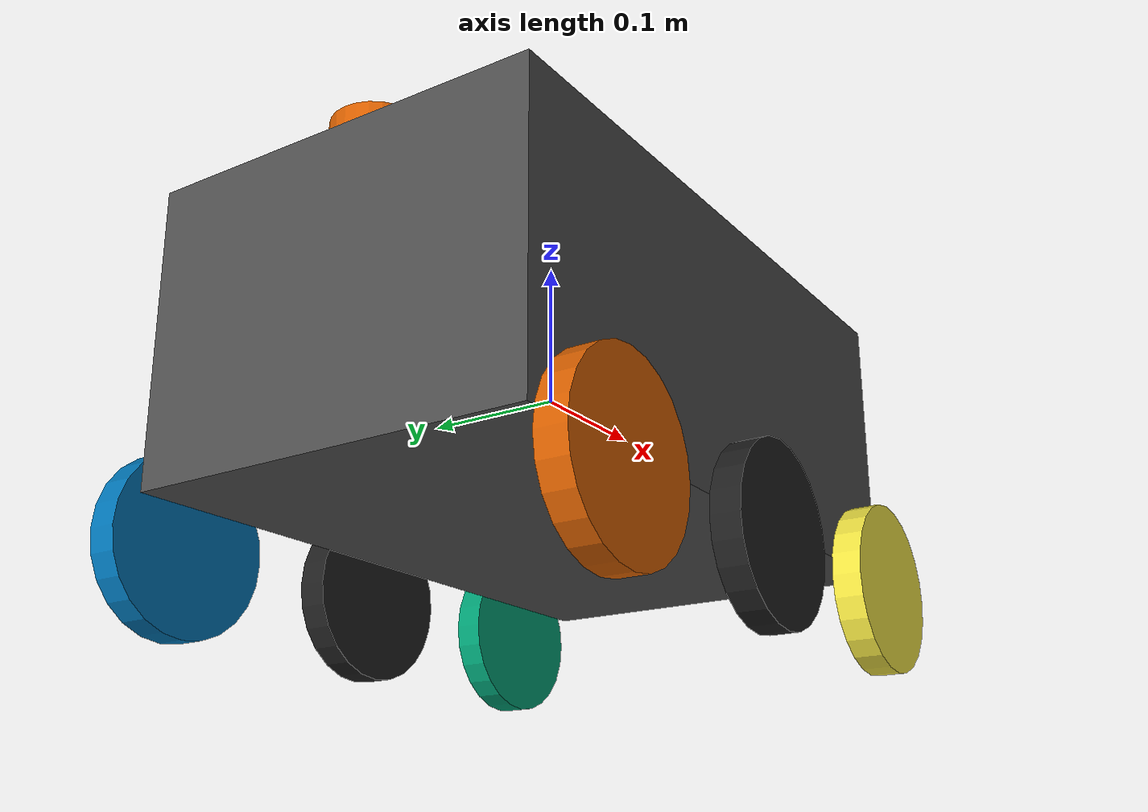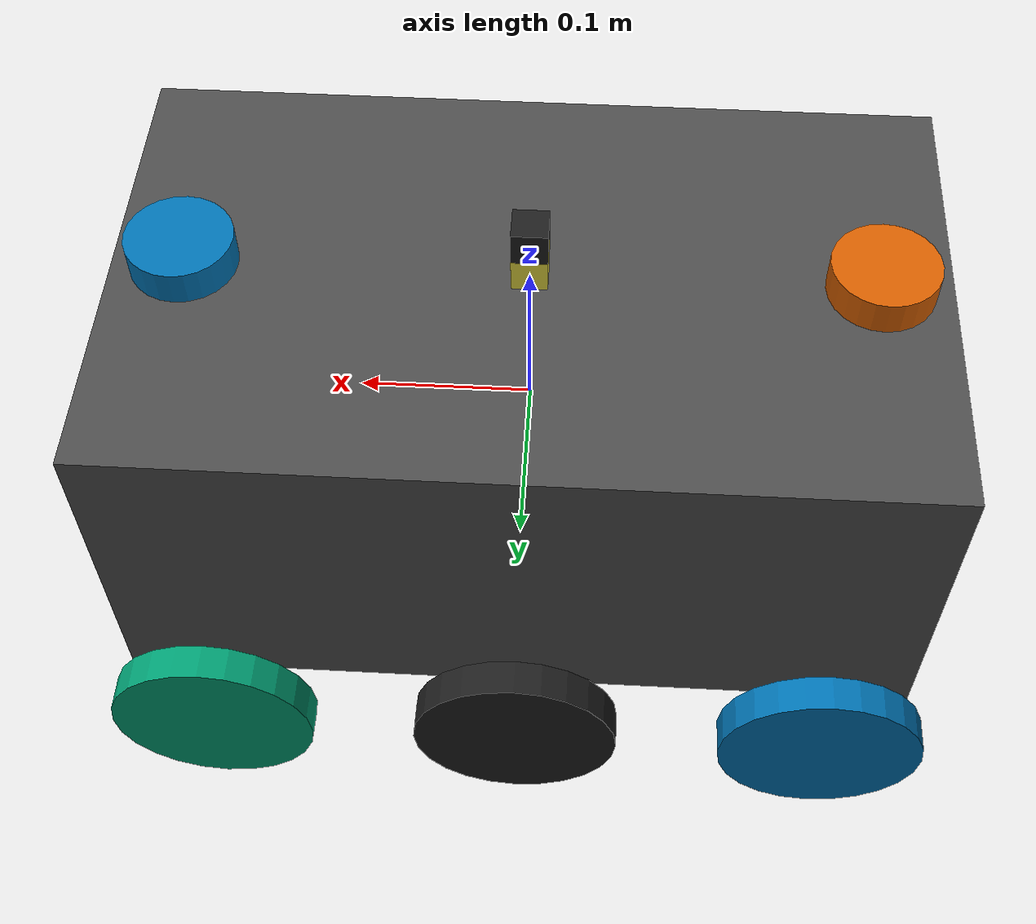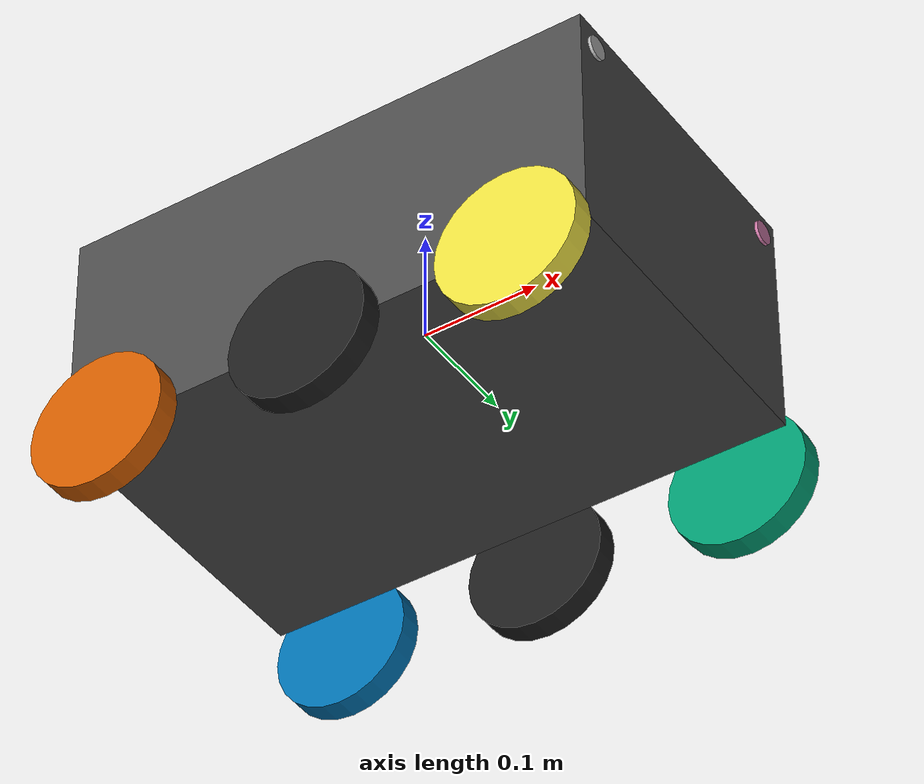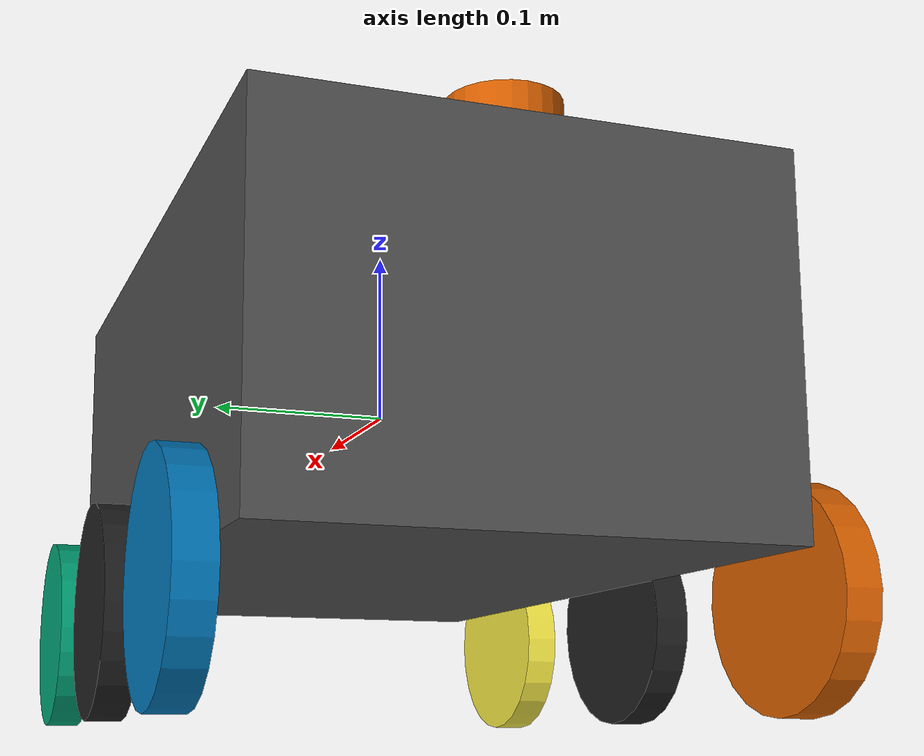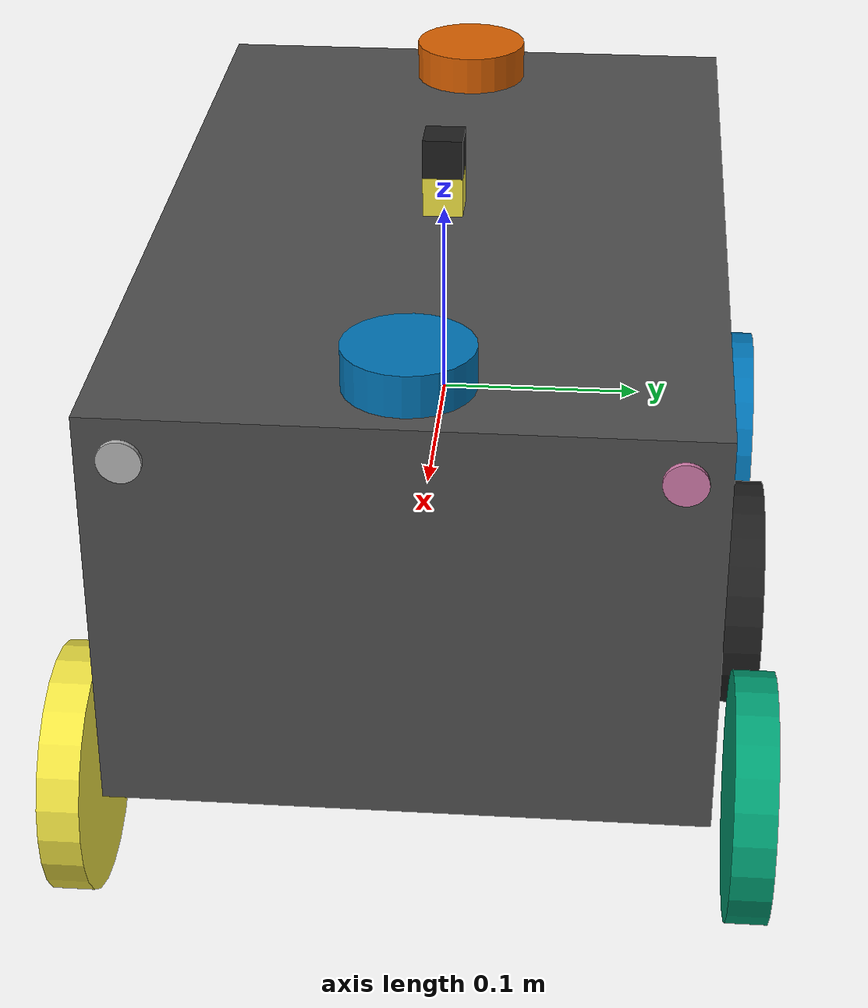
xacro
<?xml version="1.0"?>

<robot name="Ruban_GNSS_Car" xmlns:xacro="http://ros.org/wiki/xacro"
    xmlns:sensor="http://playerstage.sourceforge.net/gazebo/xmlschema/#sensor"
    xmlns:controller="http://playerstage.sourceforge.net/gazebo/xmlschema/#controller"
    xmlns:interface="http://playerstage.sourceforge.net/gazebo/xmlschema/#interface">
  <!--xacro:include filename="$(find $(find ruban_sim)/urdf/common_properties.xacro"/-->
  <xacro:include filename="$(find ruban_gnss_sim)/urdf/ruban_gnss_car.gazebo.xacro"/>

  <material name="white">
    <color rgba="1 1 1 1"/>
  </material>
  <material name="blue">
    <color rgba="0 0 0.8 1"/>
  </material>

  <!-- Base Size -->
  <property name="base_x_size" value="0.54" />
  <property name="base_y_size" value="0.46" />
  <property name="base_z_size" value="0.045" />

  <xacro:property name="base_mass" value="20.0" />

  <xacro:property name="base_x_offset" value="${(base_x_size/2)}"/>
  <xacro:property name="base_y_offset" value="${(base_y_size/2)}"/>
  <xacro:property name="base_z_offset" value="0.12"/>

  <!-- Wheel Properties -->
  <xacro:property name="wheel_length" value="0.03" />
  <xacro:property name="wheel_radius" value="0.1" />
  <xacro:property name="wheel_mass" value="1.0" />
  <xacro:property name="small_wheel_length" value="0.025" />
  <xacro:property name="small_wheel_radius" value="0.0375" />
  <xacro:property name="small_wheel_mass" value="0.5" />
  <!-- Wheel Mounting Positions -->
  <xacro:property name="wheelbase" value="0" />
  <xacro:property name="track" value="0.410" />
  <xacro:property name="wheel_vertical_offset" value="${wheel_radius-base_z_offset}" />
  <xacro:property name="small_wheelbase" value="0.48" />
  <xacro:property name="small_track" value="0.26" />
  <xacro:property name="small_wheel_vertical_offset" value="${small_wheel_radius-base_z_offset}" />
  <!-- macro -->
    <xacro:macro name="default_inertial" params="mass">
        <inertial>
            <mass value="${mass}" />
            <inertia ixx="0.1" ixy="0.0" ixz="0.0" iyy="0.1" iyz="0.0" izz="0.1" />
        </inertial>
    </xacro:macro>

    <xacro:macro name="box_geometry" params="width length height">
        <geometry>
            <box size="${width} ${length} ${height}"/>
        </geometry>
    </xacro:macro>

    <xacro:macro name="cylinder_geometry" params="length radius">
        <geometry>
            <cylinder length="${length}" radius="${radius}"/>
        </geometry>
    </xacro:macro>

    <xacro:macro name="default_origin" params="xyz rpyaw">
        <origin xyz="${xyz}" rpy="${rpyaw}"/>
    </xacro:macro>

<!-- base -->

   <link name="base_link">
      <visual>
        <origin rpy="0 0 0" xyz="0 0 0"/>
        <geometry>
          <box size="0.46 0.28 0.2" />
        </geometry>
      </visual>
       <collision>
        <origin xyz="0 0 0" rpy="0 0 0" />
        <geometry>
          <box size="0.46 0.28 0.2" />
        </geometry>
      </collision>
      <xacro:default_inertial mass="1.0"/>
    </link>

    <link name="base_footprint"/>

    <joint name="base_footprint_joint" type="fixed">
      <origin xyz="0 0 0" rpy="0 0 0" />
      <parent link="base_footprint" />
      <child link="base_link" />
    </joint>

<!--  lidar  -->
     <link name="RoboPeak">
	    <visual>
	        <origin xyz="0 0 0" rpy="0 0 3.14159" />
	 	    <geometry>
		        <box size="0.02 0.02 0.02" />
		    </geometry>
	    </visual>
            <collision>
                <origin xyz="0 0 0" rpy="0 0 0" />
                    <geometry>
		        <box size="0.02 0.02 0.02" />
                    </geometry>
            </collision>
		      <xacro:default_inertial mass="0.02"/>
    	</link>
    	<!--Attach RoboPeak_base to the laser_base-->
    	<joint name="RoboPeak_joint" type="fixed">
	    <parent link="laser_base_link" />
	    <child link="RoboPeak"/>
	    <origin xyz="0 0 0.02" rpy="0 0 0" />
    	</joint>

      <link name="laser_base_link">
	<visual>
	    <origin xyz="0 0 0" rpy="0 0 0" />
	 	<geometry>
		    <box size="0.02 0.02 0.02" />
		</geometry>
	</visual>
            <collision>
                <origin xyz="0 0 0" rpy="0 0 0" />
                    <geometry>
		    <box size="0.02 0.02 0.02" />
                    </geometry>
            </collision>
	    <xacro:default_inertial mass="0.02"/>
       </link>
    <!--Attach laser base to the base_link-->
       <joint name="laser_base_joint" type="fixed">
	<parent link="base_link" />
	<child link="laser_base_link"/>
	<origin xyz="0 0 0.11" rpy="0 0 0" />
       </joint>

<!--  rtk1  -->
     <link name="RTK_1">
	    <visual>
	        <origin xyz="0 0 0" rpy="0 0 0" />
	 	    <geometry>
		        <cylinder radius="0.03" length="0.02"/>
		    </geometry>
	    </visual>
            <collision>
                <origin xyz="0 0 0" rpy="0 0 0" />
                    <geometry>
		        <cylinder radius="0.03" length="0.02"/>
                    </geometry>
            </collision>
		      <xacro:default_inertial mass="0.002"/>
    	</link>
    	<!--Attach RoboPeak_base to the laser_base-->
    	<joint name="RTK_1_joint" type="fixed">
	    <parent link="base_link" />
	    <child link="RTK_1"/>
	    <origin xyz="0.19 0 0.11" rpy="0 0 0" />
    	</joint>

<!--  rtk2  -->
     <link name="RTK_2">
	    <visual>
	        <origin xyz="0 0 0" rpy="0 0 0" />
	 	    <geometry>
		        <cylinder radius="0.03" length="0.02"/>
		    </geometry>
	    </visual>
            <collision>
                <origin xyz="0 0 0" rpy="0 0 0" />
                    <geometry>
		        <cylinder radius="0.03" length="0.02"/>
                    </geometry>
            </collision>
		      <xacro:default_inertial mass="0.002"/>
    	</link>
    	<!--Attach RoboPeak_base to the laser_base-->
    	<joint name="RTK_2_joint" type="fixed">
	    <parent link="base_link" />
	    <child link="RTK_2"/>
	    <origin xyz=" -0.19 0 0.11" rpy="0 0 0" />
    	</joint>

<!--  cam1  -->
     <link name="camera_1">
	    <visual>
	        <origin xyz="0 0 0" rpy="0 1.5707 0" />
	 	    <geometry>
		        <cylinder radius="0.01" length="0.005"/>
		    </geometry>
	    </visual>
            <collision>
                <origin xyz="0 0 0" rpy="0 1.5707 0" />
                    <geometry>
		        <cylinder radius="0.01" length="0.005"/>
                    </geometry>
            </collision>
		      <xacro:default_inertial mass="0.002"/>
    	</link>
    	<!--Attach RoboPeak_base to the laser_base-->
    	<joint name="camera_1_joint" type="fixed">
	    <parent link="base_link" />
	    <child link="camera_1"/>
	    <origin xyz=" 0.23 0.12 0.08" rpy="0 0 0" />
    	</joint>
<!--  cam2  -->
     <link name="camera_2">
	    <visual>
	        <origin xyz="0 0 0" rpy="0 1.5707 0" />
	 	    <geometry>
		        <cylinder radius="0.01" length="0.005"/>
		    </geometry>
	    </visual>
            <collision>
                <origin xyz="0 0 0" rpy="0 1.5707 0" />
                    <geometry>
		        <cylinder radius="0.01" length="0.005"/>
                    </geometry>
            </collision>
		      <xacro:default_inertial mass="0.002"/>
    	</link>
    	<!--Attach RoboPeak_base to the laser_base-->
    	<joint name="camera_2_joint" type="fixed">
	    <parent link="base_link" />
	    <child link="camera_2"/>
	    <origin xyz=" 0.23 -0.120 0.08" rpy="0 0 0" />
    	</joint>

<!-- wheel powered -->

  <link name="left_wheel_link">

    <collision name="collision">
      <origin xyz="0 0 0" rpy="0 1.5707 1.5707"/>
      <geometry>
        <cylinder radius="0.06" length="0.02"/>
      </geometry>
    </collision>
    <visual name="left_wheel_visual">
      <origin xyz="0 0 0" rpy="0 1.5707 1.5707"/>
      <geometry>
        <cylinder radius="0.06" length="0.02"/>
      </geometry>
    </visual>
    <inertial>
      <origin xyz="0 0 0" rpy="0 1.5707 1.5707"/>
      <mass value="1"/>
      <inertia
        ixx=".1" ixy="0.0" ixz="0.0"
        iyy=".1" iyz="0.0"
        izz=".1"/>
    </inertial>
  </link>
  <link name="right_wheel_link">

    <collision name="collision">
      <origin xyz="0 0 0" rpy="0 1.5707 1.5707"/>
      <geometry>
        <cylinder radius="0.06" length="0.02"/>
      </geometry>
    </collision>
    <visual name="right_wheel_visual">
      <origin xyz="0 0 0" rpy="0 1.5707 1.5707"/>
      <geometry>
        <cylinder radius="0.06" length="0.02"/>
      </geometry>
    </visual>
    <inertial>
      <origin xyz="0 0 0" rpy="0 1.5707 1.5707"/>
      <mass value="1"/>
      <inertia
        ixx=".1" ixy="0.0" ixz="0.0"
        iyy=".1" iyz="0.0"
        izz=".1"/>
    </inertial>
  </link>

  <joint name="left_wheel" type="continuous">
    <origin xyz="0 0.16 -0.12" rpy="0 0 0"/>
    <parent link="base_link"/>
    <child link="left_wheel_link"/>
    <axis xyz="0 1 0" rpy="0 0 0"/>
    <limit effort="10000" velocity="1000"/>
    <joint_properties damping="1.0" friction="1.0"/>
  </joint>

  <joint name="right_wheel" type="continuous">
    <origin xyz="0 -0.16 -0.12" rpy="0 0 0"/>
    <child link="right_wheel_link"/>
    <parent link="base_link"/>
    <axis xyz="0 1 0" rpy="0 0 0"/>
    <limit effort="10000" velocity="1000"/>
    <joint_properties damping="1.0" friction="1.0"/>
  </joint>

<!--back wheel powerless -->

  <link name="back_left_wheel_link">

    <collision name="collision">
      <origin xyz="0 0 0" rpy="0 1.5707 1.5707"/>
      <geometry>
        <cylinder radius="0.06" length="0.02"/>
      </geometry>
    </collision>
    <visual name="back_left_wheel_visual">
      <origin xyz="0 0 0" rpy="0 1.5707 1.5707"/>
      <geometry>
        <cylinder radius="0.06" length="0.02"/>
      </geometry>
    </visual>
    <inertial>
      <origin xyz="0 0 0" rpy="0 1.5707 1.5707"/>
      <mass value="0.2"/>
      <inertia
        ixx=".01" ixy="0.0" ixz="0.0"
        iyy=".01" iyz="0.0"
        izz=".01"/>
    </inertial>
  </link>
  <link name="back_right_wheel_link">

    <collision name="collision">
      <origin xyz="0 0 0" rpy="0 1.5707 1.5707"/>
      <geometry>
        <cylinder radius="0.06" length="0.02"/>
      </geometry>
    </collision>
    <visual name="back_right_wheel_visual">
      <origin xyz="0 0 0" rpy="0 1.5707 1.5707"/>
      <geometry>
        <cylinder radius="0.06" length="0.02"/>
      </geometry>
    </visual>
    <inertial>
      <origin xyz="0 0 0" rpy="0 1.5707 1.5707"/>
      <mass value="0.2"/>
      <inertia
        ixx=".01" ixy="0.0" ixz="0.0"
        iyy=".01" iyz="0.0"
        izz=".01"/>
    </inertial>
  </link>

  <joint name="back_left_wheel" type="continuous">
    <origin xyz="0.18 0.16 -0.12" rpy="0 0 0"/>
    <parent link="base_link"/>
    <child link="back_left_wheel_link"/>
    <axis xyz="0 1 0" rpy="0 0 0"/>
    <limit effort="10000" velocity="1000"/>
    <joint_properties damping="1.0" friction="1.0"/>
  </joint>

  <joint name="back_right_wheel" type="continuous">
    <origin xyz="0.18 -0.16 -0.120000001" rpy="0 0 0"/>
    <child link="back_right_wheel_link"/>
    <parent link="base_link"/>
    <axis xyz="0 1 0" rpy="0 0 0"/>
    <limit effort="10000" velocity="1000"/>
    <joint_properties damping="1.0" friction="1.0"/>
  </joint>

<!--front wheel powerless -->

  <link name="front_left_wheel_link">

    <collision name="collision">
      <origin xyz="0 0 0" rpy="0 1.5707 1.5707"/>
      <geometry>
        <cylinder radius="0.06" length="0.02"/>
      </geometry>
    </collision>
    <visual name="front_left_wheel_visual">
      <origin xyz="0 0 0" rpy="0 1.5707 1.5707"/>
      <geometry>
        <cylinder radius="0.06" length="0.02"/>
      </geometry>
    </visual>
    <inertial>
      <origin xyz="0 0 0" rpy="0 1.5707 1.5707"/>
      <mass value="0.2"/>
      <inertia
        ixx=".01" ixy="0.0" ixz="0.0"
        iyy=".01" iyz="0.0"
        izz=".01"/>
    </inertial>
  </link>
  <link name="front_right_wheel_link">

    <collision name="collision">
      <origin xyz="0 0 0" rpy="0 1.5707 1.5707"/>
      <geometry>
        <cylinder radius="0.06" length="0.02"/>
      </geometry>
    </collision>
    <visual name="front_right_wheel_visual">
      <origin xyz="0 0 0" rpy="0 1.5707 1.5707"/>
      <geometry>
        <cylinder radius="0.06" length="0.02"/>
      </geometry>
    </visual>
    <inertial>
      <origin xyz="0 0 0" rpy="0 1.5707 1.5707"/>
      <mass value="0.02"/>
      <inertia
        ixx=".01" ixy="0.0" ixz="0.0"
        iyy=".01" iyz="0.0"
        izz=".01"/>
    </inertial>
  </link>

  <joint name="front_left_wheel" type="continuous">
    <origin xyz="-0.18 0.16 -0.12" rpy="0 0 0"/>
    <parent link="base_link"/>
    <child link="front_left_wheel_link"/>
    <axis xyz="0 1 0" rpy="0 0 0"/>
    <limit effort="10000" velocity="1000"/>
    <joint_properties damping="1.0" friction="1.0"/>
  </joint>

  <joint name="front_right_wheel" type="continuous">
    <origin xyz="-0.18 -0.16 -0.12" rpy="0 0 0"/>
    <child link="front_right_wheel_link"/>
    <parent link="base_link"/>
    <axis xyz="0 1 0" rpy="0 0 0"/>
    <limit effort="10000" velocity="1000"/>
    <joint_properties damping="1.0" friction="1.0"/>
  </joint>

</robot>
